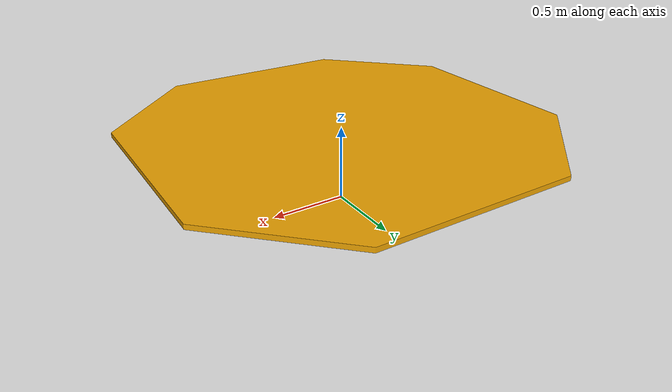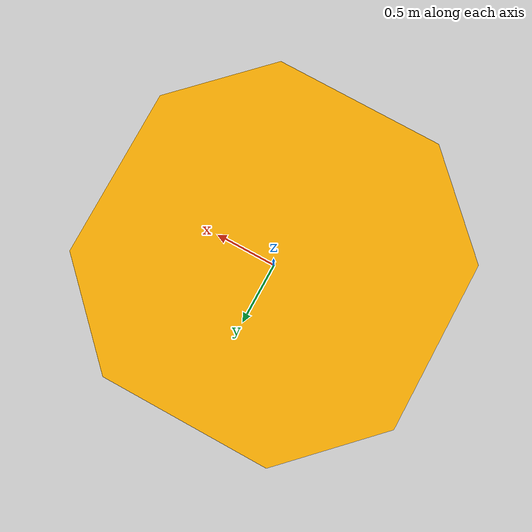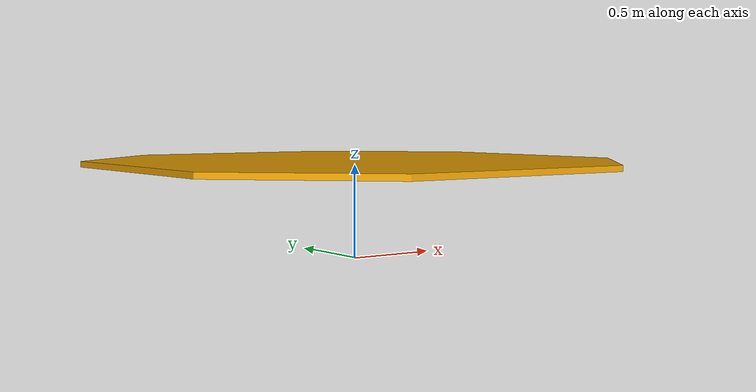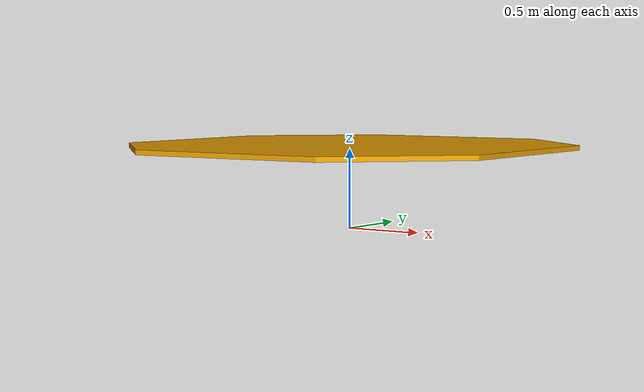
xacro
<?xml version="1.0"?>
<robot name="small_ring" xmlns:xacro="http://www.ros.org/wiki/xacro">
  <xacro:include filename="./small_ring.gazebo" />
  <xacro:macro name="small_ring">
    <link name="ring_link">
      <collision>
        <origin xyz="0 0 -0.97" rpy="0 0 0" />
        <geometry>
          <mesh filename="package://kuroko_description/meshes/roboone_ring/stl/small_ring.stl" />
        </geometry>
      </collision>
      <visual>
        <origin xyz="0 0 0" rpy="0 0 0" />
        <geometry>
          <mesh filename="package://kuroko_description/meshes/roboone_ring/obj/small_ring.obj" />
        </geometry>
      </visual>
      <inertial>
        <mass value="242.39250000" />
        <origin xyz="0 0 0.01500000" rpy="0 0 0" />
        <inertia
          ixx="109.87392319"
          ixy="0.00000000" iyy="109.87392319"
          ixz="0.00000000" iyz="0.00000000" izz="219.71148750" />
      </inertial>
    </link>
  </xacro:macro>
  <xacro:small_ring />
  <xacro:small_ring_gazebo />
</robot>

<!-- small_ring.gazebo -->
<robot xmlns:xacro="http://www.ros.org/wiki/xacro">
  <xacro:include filename="$(find kuroko_description)/xacro/physics/default_gazebo_params.xacro" />
  <xacro:macro name="small_ring_gazebo">
    <link name="world" />
    <joint name="world_joint" type="fixed">
      <origin xyz="0 0 0.5" rpy="0 0 0" />
      <parent link="world" />
      <child link="ring_link" />
    </joint>
    <gazebo reference="world_joint">
      <disableFixedJointLumping>true</disableFixedJointLumping>
      <preserveFixedJoint>true</preserveFixedJoint>
    </gazebo>
    <gazebo reference="ring_link">
      <kp>100000.0</kp>
      <kd>100.0</kd>
      <mu1>1000</mu1>
      <maxVel>1.0</maxVel>
      <minDepth>0.0</minDepth>
      <maxContacts>20</maxContacts>
      <selfCollide>true</selfCollide>
      <dampingFactor>0.0</dampingFactor>
    </gazebo>
    <gazebo>
      <static>true</static>
    </gazebo>
  </xacro:macro>
</robot>
